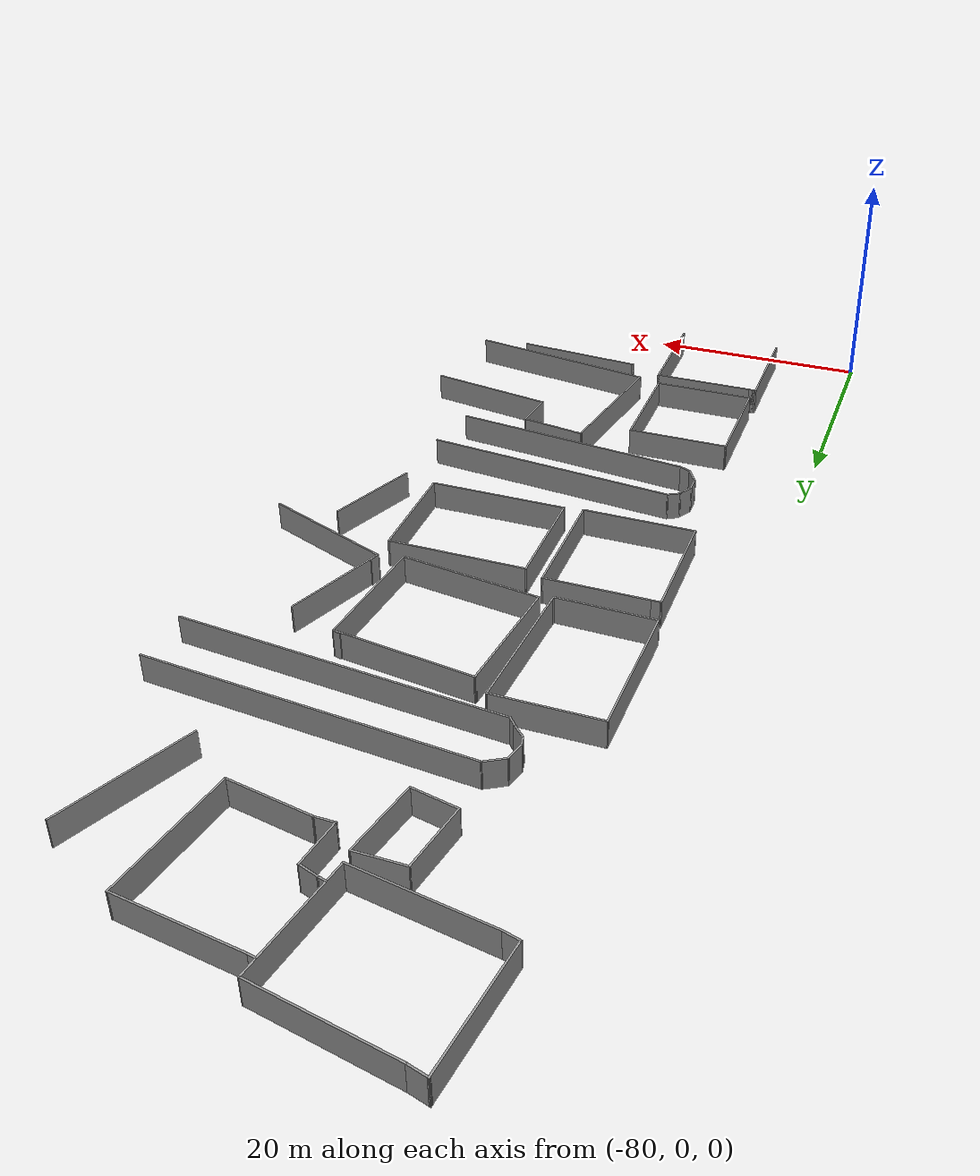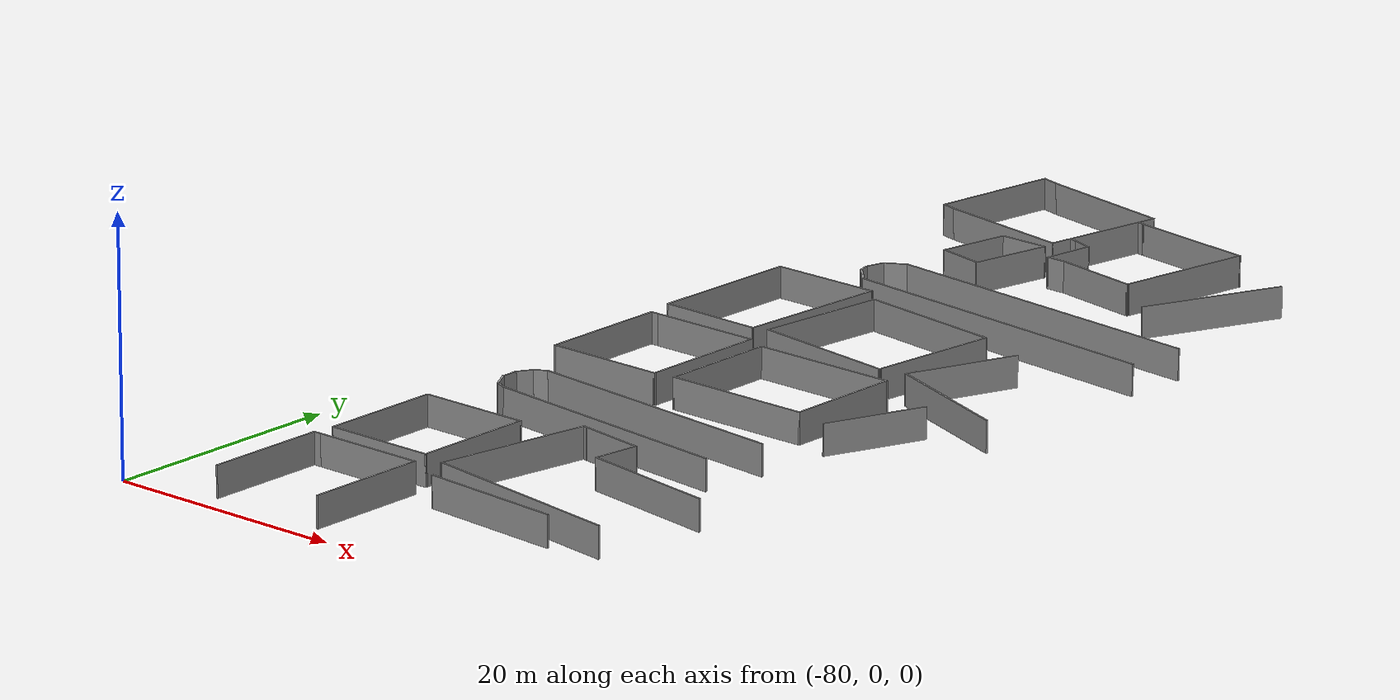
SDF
<sdf version="1.6">
 <model name="palazzo2">
  <pose>-3.81107 -3.99805 0 0 -0 0</pose>
  <link name="Wall_146">
   <collision name="Wall_146_Collision">
    <geometry><box><size>22.8101 0.15 2.5</size></box></geometry>
    <pose>0 0 1.25 0 -0 0</pose>
   </collision>
   <visual name="Wall_146_Visual">
    <pose>0 0 1.25 0 -0 0</pose>
    <geometry><box><size>22.8101 0.15 2.5</size></box></geometry>
    <material>
     <script><uri>file://media/materials/scripts/gazebo.material</uri><name>Gazebo/Grey</name></script>
     <ambient>1 1 1 1</ambient>
    </material>
    <meta><layer>0</layer></meta>
   </visual>
   <pose>-54.1666 35.8429 0 0 -0 -0.091785</pose>
  </link>
  <link name="Wall_148">
   <collision name="Wall_148_Collision">
    <geometry><box><size>21.8464 0.15 2.5</size></box></geometry>
    <pose>0 0 1.25 0 -0 0</pose>
   </collision>
   <visual name="Wall_148_Visual">
    <pose>0 0 1.25 0 -0 0</pose>
    <geometry><box><size>21.8464 0.15 2.5</size></box></geometry>
    <material>
     <script><uri>file://media/materials/scripts/gazebo.material</uri><name>Gazebo/Grey</name></script>
     <ambient>1 1 1 1</ambient>
    </material>
    <meta><layer>0</layer></meta>
   </visual>
   <pose>-54.5186 30.8618 0 0 -0 -0.104028</pose>
  </link>
  <link name="Wall_150">
   <collision name="Wall_150_Collision">
    <geometry><box><size>1.25 0.15 2.5</size></box></geometry>
    <pose>0 0 1.25 0 -0 0</pose>
   </collision>
   <visual name="Wall_150_Visual">
    <pose>0 0 1.25 0 -0 0</pose>
    <geometry><box><size>1.25 0.15 2.5</size></box></geometry>
    <material>
     <script><uri>file://media/materials/scripts/gazebo.material</uri><name>Gazebo/Grey</name></script>
     <ambient>1 1 1 1</ambient>
    </material>
    <meta><layer>0</layer></meta>
   </visual>
   <pose>-65.9253 36.6064 0 0 -0 -2.61799</pose>
  </link>
  <link name="Wall_151">
   <collision name="Wall_151_Collision">
    <geometry><box><size>1.5 0.15 2.5</size></box></geometry>
    <pose>0 0 1.25 0 -0 0</pose>
   </collision>
   <visual name="Wall_151_Visual">
    <pose>0 0 1.25 0 -0 0</pose>
    <geometry><box><size>1.5 0.15 2.5</size></box></geometry>
    <material>
     <script><uri>file://media/materials/scripts/gazebo.material</uri><name>Gazebo/Grey</name></script>
     <ambient>1 1 1 1</ambient>
    </material>
    <meta><layer>0</layer></meta>
   </visual>
   <pose>-66.7391 35.7468 0 0 -0 -2.0944</pose>
  </link>
  <link name="Wall_152">
   <collision name="Wall_152_Collision">
    <geometry><box><size>1.5 0.15 2.5</size></box></geometry>
    <pose>0 0 1.25 0 -0 0</pose>
   </collision>
   <visual name="Wall_152_Visual">
    <pose>0 0 1.25 0 -0 0</pose>
    <geometry><box><size>1.5 0.15 2.5</size></box></geometry>
    <material>
     <script><uri>file://media/materials/scripts/gazebo.material</uri><name>Gazebo/Grey</name></script>
     <ambient>1 1 1 1</ambient>
    </material>
    <meta><layer>0</layer></meta>
   </visual>
   <pose>-67.0766 34.4873 0 0 -0 -1.5708</pose>
  </link>
  <link name="Wall_153">
   <collision name="Wall_153_Collision">
    <geometry><box><size>1.75 0.15 2.5</size></box></geometry>
    <pose>0 0 1.25 0 -0 0</pose>
   </collision>
   <visual name="Wall_153_Visual">
    <pose>0 0 1.25 0 -0 0</pose>
    <geometry><box><size>1.75 0.15 2.5</size></box></geometry>
    <material>
     <script><uri>file://media/materials/scripts/gazebo.material</uri><name>Gazebo/Grey</name></script>
     <ambient>1 1 1 1</ambient>
    </material>
    <meta><layer>0</layer></meta>
   </visual>
   <pose>-66.6766 33.1194 0 0 -0 -1.0472</pose>
  </link>
  <link name="Wall_154">
   <collision name="Wall_154_Collision">
    <geometry><box><size>1.21303 0.15 2.5</size></box></geometry>
    <pose>0 0 1.25 0 -0 0</pose>
   </collision>
   <visual name="Wall_154_Visual">
    <pose>0 0 1.25 0 -0 0</pose>
    <geometry><box><size>1.21303 0.15 2.5</size></box></geometry>
    <material>
     <script><uri>file://media/materials/scripts/gazebo.material</uri><name>Gazebo/Grey</name></script>
     <ambient>1 1 1 1</ambient>
    </material>
    <meta><layer>0</layer></meta>
   </visual>
   <pose>-65.7924 32.2074 0 0 -0 -0.42505</pose>
  </link>
  <link name="Wall_369">
   <collision name="Wall_369_Collision">
    <geometry><box><size>11.814 0.15 2.5</size></box></geometry>
    <pose>0 0 1.25 0 -0 0</pose>
   </collision>
   <visual name="Wall_369_Visual">
    <pose>0 0 1.25 0 -0 0</pose>
    <geometry><box><size>11.814 0.15 2.5</size></box></geometry>
    <material>
     <script><uri>file://media/materials/scripts/gazebo.material</uri><name>Gazebo/Grey</name></script>
     <ambient>1 1 1 1</ambient>
    </material>
    <meta><layer>0</layer></meta>
   </visual>
   <pose>-40.2869 82.8051 0 0 -0 1.16016</pose>
  </link>
  <link name="Wall_374">
   <collision name="Wall_374_Collision">
    <geometry><box><size>4.25 0.15 2.5</size></box></geometry>
    <pose>0 0 1.25 0 -0 0</pose>
   </collision>
   <visual name="Wall_374_Visual">
    <pose>0 0 1.25 0 -0 0</pose>
    <geometry><box><size>4.25 0.15 2.5</size></box></geometry>
    <material>
     <script><uri>file://media/materials/scripts/gazebo.material</uri><name>Gazebo/Grey</name></script>
     <ambient>1 1 1 1</ambient>
    </material>
    <meta><layer>0</layer></meta>
   </visual>
   <pose>-59.649 84.0709 0 0 -0 0</pose>
  </link>
  <link name="Wall_376">
   <collision name="Wall_376_Collision">
    <geometry><box><size>6.74302 0.15 2.5</size></box></geometry>
    <pose>0 0 1.25 0 -0 0</pose>
   </collision>
   <visual name="Wall_376_Visual">
    <pose>0 0 1.25 0 -0 0</pose>
    <geometry><box><size>6.74302 0.15 2.5</size></box></geometry>
    <material>
     <script><uri>file://media/materials/scripts/gazebo.material</uri><name>Gazebo/Grey</name></script>
     <ambient>1 1 1 1</ambient>
    </material>
    <meta><layer>0</layer></meta>
   </visual>
   <pose>-58.2521 80.8397 0 0 -0 1.37138</pose>
  </link>
  <link name="Wall_378">
   <collision name="Wall_378_Collision">
    <geometry><box><size>5.93315 0.15 2.5</size></box></geometry>
    <pose>0 0 1.25 0 -0 0</pose>
   </collision>
   <visual name="Wall_378_Visual">
    <pose>0 0 1.25 0 -0 0</pose>
    <geometry><box><size>5.93315 0.15 2.5</size></box></geometry>
    <material>
     <script><uri>file://media/materials/scripts/gazebo.material</uri><name>Gazebo/Grey</name></script>
     <ambient>1 1 1 1</ambient>
    </material>
    <meta><layer>0</layer></meta>
   </visual>
   <pose>-62.2158 81.2259 0 0 -0 1.39112</pose>
  </link>
  <link name="Wall_380">
   <collision name="Wall_380_Collision">
    <geometry><box><size>4.05458 0.15 2.5</size></box></geometry>
    <pose>0 0 1.25 0 -0 0</pose>
   </collision>
   <visual name="Wall_380_Visual">
    <pose>0 0 1.25 0 -0 0</pose>
    <geometry><box><size>4.05458 0.15 2.5</size></box></geometry>
    <material>
     <script><uri>file://media/materials/scripts/gazebo.material</uri><name>Gazebo/Grey</name></script>
     <ambient>1 1 1 1</ambient>
    </material>
    <meta><layer>0</layer></meta>
   </visual>
   <pose>-60.8189 77.9947 0 0 -0 -0.199107</pose>
  </link>
  <link name="Wall_382">
   <collision name="Wall_382_Collision">
    <geometry><box><size>1.5 0.15 2.5</size></box></geometry>
    <pose>0 0 1.25 0 -0 0</pose>
   </collision>
   <visual name="Wall_382_Visual">
    <pose>0 0 1.25 0 -0 0</pose>
    <geometry><box><size>1.5 0.15 2.5</size></box></geometry>
    <material>
     <script><uri>file://media/materials/scripts/gazebo.material</uri><name>Gazebo/Grey</name></script>
     <ambient>1 1 1 1</ambient>
    </material>
    <meta><layer>0</layer></meta>
   </visual>
   <pose>-69.6085 87.0886 0 0 -0 -0.261799</pose>
  </link>
  <link name="Wall_385">
   <collision name="Wall_385_Collision">
    <geometry><box><size>1.75 0.15 2.5</size></box></geometry>
    <pose>0 0 1.25 0 -0 0</pose>
   </collision>
   <visual name="Wall_385_Visual">
    <pose>0 0 1.25 0 -0 0</pose>
    <geometry><box><size>1.75 0.15 2.5</size></box></geometry>
    <material>
     <script><uri>file://media/materials/scripts/gazebo.material</uri><name>Gazebo/Grey</name></script>
     <ambient>1 1 1 1</ambient>
    </material>
    <meta><layer>0</layer></meta>
   </visual>
   <pose>-68.0258 97.4273 0 0 -0 -0.261799</pose>
  </link>
  <link name="Wall_387">
   <collision name="Wall_387_Collision">
    <geometry><box><size>10.6236 0.15 2.5</size></box></geometry>
    <pose>0 0 1.25 0 -0 0</pose>
   </collision>
   <visual name="Wall_387_Visual">
    <pose>0 0 1.25 0 -0 0</pose>
    <geometry><box><size>10.6236 0.15 2.5</size></box></geometry>
    <material>
     <script><uri>file://media/materials/scripts/gazebo.material</uri><name>Gazebo/Grey</name></script>
     <ambient>1 1 1 1</ambient>
    </material>
    <meta><layer>0</layer></meta>
   </visual>
   <pose>-69.5295 92.4488 0 0 -0 1.43075</pose>
  </link>
  <link name="Wall_389">
   <collision name="Wall_389_Collision">
    <geometry><box><size>11.7035 0.15 2.5</size></box></geometry>
    <pose>0 0 1.25 0 -0 0</pose>
   </collision>
   <visual name="Wall_389_Visual">
    <pose>0 0 1.25 0 -0 0</pose>
    <geometry><box><size>11.7035 0.15 2.5</size></box></geometry>
    <material>
     <script><uri>file://media/materials/scripts/gazebo.material</uri><name>Gazebo/Grey</name></script>
     <ambient>1 1 1 1</ambient>
    </material>
    <meta><layer>0</layer></meta>
   </visual>
   <pose>-61.5724 96.1709 0 0 -0 2.95893</pose>
  </link>
  <link name="Wall_391">
   <collision name="Wall_391_Collision">
    <geometry><box><size>11.5717 0.15 2.5</size></box></geometry>
    <pose>0 0 1.25 0 -0 0</pose>
   </collision>
   <visual name="Wall_391_Visual">
    <pose>0 0 1.25 0 -0 0</pose>
    <geometry><box><size>11.5717 0.15 2.5</size></box></geometry>
    <material>
     <script><uri>file://media/materials/scripts/gazebo.material</uri><name>Gazebo/Grey</name></script>
     <ambient>1 1 1 1</ambient>
    </material>
    <meta><layer>0</layer></meta>
   </visual>
   <pose>-63.315 86.0263 0 0 -0 2.98555</pose>
  </link>
  <link name="Wall_393">
   <collision name="Wall_393_Collision">
    <geometry><box><size>1.75 0.15 2.5</size></box></geometry>
    <pose>0 0 1.25 0 -0 0</pose>
   </collision>
   <visual name="Wall_393_Visual">
    <pose>0 0 1.25 0 -0 0</pose>
    <geometry><box><size>1.75 0.15 2.5</size></box></geometry>
    <material>
     <script><uri>file://media/materials/scripts/gazebo.material</uri><name>Gazebo/Grey</name></script>
     <ambient>1 1 1 1</ambient>
    </material>
    <meta><layer>0</layer></meta>
   </visual>
   <pose>-54.8862 82.1691 0 0 -0 0</pose>
  </link>
  <link name="Wall_396">
   <collision name="Wall_396_Collision">
    <geometry><box><size>7.42732 0.15 2.5</size></box></geometry>
    <pose>0 0 1.25 0 -0 0</pose>
   </collision>
   <visual name="Wall_396_Visual">
    <pose>0 0 1.25 0 -0 0</pose>
    <geometry><box><size>7.42732 0.15 2.5</size></box></geometry>
    <material>
     <script><uri>file://media/materials/scripts/gazebo.material</uri><name>Gazebo/Grey</name></script>
     <ambient>1 1 1 1</ambient>
    </material>
    <meta><layer>0</layer></meta>
   </visual>
   <pose>-50.5002 81.5523 0 0 -0 2.97126</pose>
  </link>
  <link name="Wall_398">
   <collision name="Wall_398_Collision">
    <geometry><box><size>11.4503 0.15 2.5</size></box></geometry>
    <pose>0 0 1.25 0 -0 0</pose>
   </collision>
   <visual name="Wall_398_Visual">
    <pose>0 0 1.25 0 -0 0</pose>
    <geometry><box><size>11.4503 0.15 2.5</size></box></geometry>
    <material>
     <script><uri>file://media/materials/scripts/gazebo.material</uri><name>Gazebo/Grey</name></script>
     <ambient>1 1 1 1</ambient>
    </material>
    <meta><layer>0</layer></meta>
   </visual>
   <pose>-45.989 86.5094 0 0 -0 -1.73528</pose>
  </link>
  <link name="Wall_400">
   <collision name="Wall_400_Collision">
    <geometry><box><size>10.7048 0.15 2.5</size></box></geometry>
    <pose>0 0 1.25 0 -0 0</pose>
   </collision>
   <visual name="Wall_400_Visual">
    <pose>0 0 1.25 0 -0 0</pose>
    <geometry><box><size>10.7048 0.15 2.5</size></box></geometry>
    <material>
     <script><uri>file://media/materials/scripts/gazebo.material</uri><name>Gazebo/Grey</name></script>
     <ambient>1 1 1 1</ambient>
    </material>
    <meta><layer>0</layer></meta>
   </visual>
   <pose>-50.295 92.78 0 0 -0 -0.132409</pose>
  </link>
  <link name="Wall_402">
   <collision name="Wall_402_Collision">
    <geometry><box><size>4.21414 0.15 2.5</size></box></geometry>
    <pose>0 0 1.25 0 -0 0</pose>
   </collision>
   <visual name="Wall_402_Visual">
    <pose>0 0 1.25 0 -0 0</pose>
    <geometry><box><size>4.21414 0.15 2.5</size></box></geometry>
    <material>
     <script><uri>file://media/materials/scripts/gazebo.material</uri><name>Gazebo/Grey</name></script>
     <ambient>1 1 1 1</ambient>
    </material>
    <meta><layer>0</layer></meta>
   </visual>
   <pose>-55.3892 84.1794 0 0 -0 -1.71746</pose>
  </link>
  <link name="Wall_404">
   <collision name="Wall_404_Collision">
    <geometry><box><size>1.86206 0.15 2.5</size></box></geometry>
    <pose>0 0 1.25 0 -0 0</pose>
   </collision>
   <visual name="Wall_404_Visual">
    <pose>0 0 1.25 0 -0 0</pose>
    <geometry><box><size>1.86206 0.15 2.5</size></box></geometry>
    <material>
     <script><uri>file://media/materials/scripts/gazebo.material</uri><name>Gazebo/Grey</name></script>
     <ambient>1 1 1 1</ambient>
    </material>
    <meta><layer>0</layer></meta>
   </visual>
   <pose>-55.9032 86.4637 0 0 -0 -0.32597</pose>
  </link>
  <link name="Wall_406">
   <collision name="Wall_406_Collision">
    <geometry><box><size>10.2905 0.15 2.5</size></box></geometry>
    <pose>0 0 1.25 0 -0 0</pose>
   </collision>
   <visual name="Wall_406_Visual">
    <pose>0 0 1.25 0 -0 0</pose>
    <geometry><box><size>10.2905 0.15 2.5</size></box></geometry>
    <material>
     <script><uri>file://media/materials/scripts/gazebo.material</uri><name>Gazebo/Grey</name></script>
     <ambient>1 1 1 1</ambient>
    </material>
    <meta><layer>0</layer></meta>
   </visual>
   <pose>-56.7827 90.1302 0 0 -0 1.39417</pose>
  </link>
  <link name="Wall_413">
   <collision name="Wall_413_Collision">
    <geometry><box><size>0.776557 0.15 2.5</size></box></geometry>
    <pose>0 0 1.25 0 -0 0</pose>
   </collision>
   <visual name="Wall_413_Visual">
    <pose>0 0 1.25 0 -0 0</pose>
    <geometry><box><size>0.776557 0.15 2.5</size></box></geometry>
    <material>
     <script><uri>file://media/materials/scripts/gazebo.material</uri><name>Gazebo/Grey</name></script>
     <ambient>1 1 1 1</ambient>
    </material>
    <meta><layer>0</layer></meta>
   </visual>
   <pose>-55.8321 93.5446 0 0 -0 -0.218264</pose>
  </link>
  <link name="Wall_415">
   <collision name="Wall_415_Collision">
    <geometry><box><size>0.784439 0.15 2.5</size></box></geometry>
    <pose>0 0 1.25 0 -0 0</pose>
   </collision>
   <visual name="Wall_415_Visual">
    <pose>0 0 1.25 0 -0 0</pose>
    <geometry><box><size>0.784439 0.15 2.5</size></box></geometry>
    <material>
     <script><uri>file://media/materials/scripts/gazebo.material</uri><name>Gazebo/Grey</name></script>
     <ambient>1 1 1 1</ambient>
    </material>
    <meta><layer>0</layer></meta>
   </visual>
   <pose>-57.0235 86.8082 0 0 -0 -0.223621</pose>
  </link>
  <link name="Wall_465">
   <collision name="Wall_465_Collision">
    <geometry><box><size>8.4006 0.15 2.5</size></box></geometry>
    <pose>0 0 1.25 0 -0 0</pose>
   </collision>
   <visual name="Wall_465_Visual">
    <pose>0 0 1.25 0 -0 0</pose>
    <geometry><box><size>8.4006 0.15 2.5</size></box></geometry>
    <material>
     <script><uri>file://media/materials/scripts/gazebo.material</uri><name>Gazebo/Grey</name></script>
     <ambient>1 1 1 1</ambient>
    </material>
    <meta><layer>0</layer></meta>
   </visual>
   <pose>-41.0358 44.9994 0 0 -0 1.19591</pose>
  </link>
  <link name="Wall_482">
   <collision name="Wall_482_Collision">
    <geometry><box><size>1 0.15 2.5</size></box></geometry>
    <pose>0 0 1.25 0 -0 0</pose>
   </collision>
   <visual name="Wall_482_Visual">
    <pose>0 0 1.25 0 -0 0</pose>
    <geometry><box><size>1 0.15 2.5</size></box></geometry>
    <material>
     <script><uri>file://media/materials/scripts/gazebo.material</uri><name>Gazebo/Grey</name></script>
     <ambient>1 1 1 1</ambient>
    </material>
    <meta><layer>0</layer></meta>
   </visual>
   <pose>-45.3997 54.0771 0 0 -0 1.309</pose>
  </link>
  <link name="Wall_484">
   <collision name="Wall_484_Collision">
    <geometry><box><size>9.38659 0.15 2.5</size></box></geometry>
    <pose>0 0 1.25 0 -0 0</pose>
   </collision>
   <visual name="Wall_484_Visual">
    <pose>0 0 1.25 0 -0 0</pose>
    <geometry><box><size>9.38659 0.15 2.5</size></box></geometry>
    <material>
     <script><uri>file://media/materials/scripts/gazebo.material</uri><name>Gazebo/Grey</name></script>
     <ambient>1 1 1 1</ambient>
    </material>
    <meta><layer>0</layer></meta>
   </visual>
   <pose>-43.8509 57.9767 0 0 -0 -1.93817</pose>
  </link>
  <link name="Wall_486">
   <collision name="Wall_486_Collision">
    <geometry><box><size>12.1287 0.15 2.5</size></box></geometry>
    <pose>0 0 1.25 0 -0 0</pose>
   </collision>
   <visual name="Wall_486_Visual">
    <pose>0 0 1.25 0 -0 0</pose>
    <geometry><box><size>12.1287 0.15 2.5</size></box></geometry>
    <material>
     <script><uri>file://media/materials/scripts/gazebo.material</uri><name>Gazebo/Grey</name></script>
     <ambient>1 1 1 1</ambient>
    </material>
    <meta><layer>0</layer></meta>
   </visual>
   <pose>-39.9065 51.5507 0 0 -0 2.78052</pose>
  </link>
  <link name="Wall_492">
   <collision name="Wall_492_Collision">
    <geometry><box><size>0.75 0.15 2.5</size></box></geometry>
    <pose>0 0 1.25 0 -0 0</pose>
   </collision>
   <visual name="Wall_492_Visual">
    <pose>0 0 1.25 0 -0 0</pose>
    <geometry><box><size>0.75 0.15 2.5</size></box></geometry>
    <material>
     <script><uri>file://media/materials/scripts/gazebo.material</uri><name>Gazebo/Grey</name></script>
     <ambient>1 1 1 1</ambient>
    </material>
    <meta><layer>0</layer></meta>
   </visual>
   <pose>-46.8443 64.0363 0 0 -0 2.87979</pose>
  </link>
  <link name="Wall_494">
   <collision name="Wall_494_Collision">
    <geometry><box><size>12.4492 0.15 2.5</size></box></geometry>
    <pose>0 0 1.25 0 -0 0</pose>
   </collision>
   <visual name="Wall_494_Visual">
    <pose>0 0 1.25 0 -0 0</pose>
    <geometry><box><size>12.4492 0.15 2.5</size></box></geometry>
    <material>
     <script><uri>file://media/materials/scripts/gazebo.material</uri><name>Gazebo/Grey</name></script>
     <ambient>1 1 1 1</ambient>
    </material>
    <meta><layer>0</layer></meta>
   </visual>
   <pose>-52.654 64.7423 0 0 -0 -0.12778</pose>
  </link>
  <link name="Wall_496">
   <collision name="Wall_496_Collision">
    <geometry><box><size>10.9654 0.15 2.5</size></box></geometry>
    <pose>0 0 1.25 0 -0 0</pose>
   </collision>
   <visual name="Wall_496_Visual">
    <pose>0 0 1.25 0 -0 0</pose>
    <geometry><box><size>10.9654 0.15 2.5</size></box></geometry>
    <material>
     <script><uri>file://media/materials/scripts/gazebo.material</uri><name>Gazebo/Grey</name></script>
     <ambient>1 1 1 1</ambient>
    </material>
    <meta><layer>0</layer></meta>
   </visual>
   <pose>-47.0901 58.5775 0 0 -0 1.47161</pose>
  </link>
  <link name="Wall_498">
   <collision name="Wall_498_Collision">
    <geometry><box><size>10.9447 0.15 2.5</size></box></geometry>
    <pose>0 0 1.25 0 -0 0</pose>
   </collision>
   <visual name="Wall_498_Visual">
    <pose>0 0 1.25 0 -0 0</pose>
    <geometry><box><size>10.9447 0.15 2.5</size></box></geometry>
    <material>
     <script><uri>file://media/materials/scripts/gazebo.material</uri><name>Gazebo/Grey</name></script>
     <ambient>1 1 1 1</ambient>
    </material>
    <meta><layer>0</layer></meta>
   </visual>
   <pose>-59.3152 60.1579 0 0 -0 1.46655</pose>
  </link>
  <link name="Wall_500">
   <collision name="Wall_500_Collision">
    <geometry><box><size>12.5044 0.15 2.5</size></box></geometry>
    <pose>0 0 1.25 0 -0 0</pose>
   </collision>
   <visual name="Wall_500_Visual">
    <pose>0 0 1.25 0 -0 0</pose>
    <geometry><box><size>12.5044 0.15 2.5</size></box></geometry>
    <material>
     <script><uri>file://media/materials/scripts/gazebo.material</uri><name>Gazebo/Grey</name></script>
     <ambient>1 1 1 1</ambient>
    </material>
    <meta><layer>0</layer></meta>
   </visual>
   <pose>-53.7512 53.9931 0 0 -0 -0.129338</pose>
  </link>
  <link name="Wall_502">
   <collision name="Wall_502_Collision">
    <geometry><box><size>0.5 0.15 2.5</size></box></geometry>
    <pose>0 0 1.25 0 -0 0</pose>
   </collision>
   <visual name="Wall_502_Visual">
    <pose>0 0 1.25 0 -0 0</pose>
    <geometry><box><size>0.5 0.15 2.5</size></box></geometry>
    <material>
     <script><uri>file://media/materials/scripts/gazebo.material</uri><name>Gazebo/Grey</name></script>
     <ambient>1 1 1 1</ambient>
    </material>
    <meta><layer>0</layer></meta>
   </visual>
   <pose>-60.9739 54.5469 0 0 -0 1.5708</pose>
  </link>
  <link name="Wall_505">
   <collision name="Wall_505_Collision">
    <geometry><box><size>12.7636 0.15 2.5</size></box></geometry>
    <pose>0 0 1.25 0 -0 0</pose>
   </collision>
   <visual name="Wall_505_Visual">
    <pose>0 0 1.25 0 -0 0</pose>
    <geometry><box><size>12.7636 0.15 2.5</size></box></geometry>
    <material>
     <script><uri>file://media/materials/scripts/gazebo.material</uri><name>Gazebo/Grey</name></script>
     <ambient>1 1 1 1</ambient>
    </material>
    <meta><layer>0</layer></meta>
   </visual>
   <pose>-60.5951 60.6673 0 0 -0 -1.63089</pose>
  </link>
  <link name="Wall_509">
   <collision name="Wall_509_Collision">
    <geometry><box><size>9.25 0.15 2.5</size></box></geometry>
    <pose>0 0 1.25 0 -0 0</pose>
   </collision>
   <visual name="Wall_509_Visual">
    <pose>0 0 1.25 0 -0 0</pose>
    <geometry><box><size>9.25 0.15 2.5</size></box></geometry>
    <material>
     <script><uri>file://media/materials/scripts/gazebo.material</uri><name>Gazebo/Grey</name></script>
     <ambient>1 1 1 1</ambient>
    </material>
    <meta><layer>0</layer></meta>
   </visual>
   <pose>-64.7664 66.9627 0 0 -0 3.14159</pose>
  </link>
  <link name="Wall_511">
   <collision name="Wall_511_Collision">
    <geometry><box><size>12.5861 0.15 2.5</size></box></geometry>
    <pose>0 0 1.25 0 -0 0</pose>
   </collision>
   <visual name="Wall_511_Visual">
    <pose>0 0 1.25 0 -0 0</pose>
    <geometry><box><size>12.5861 0.15 2.5</size></box></geometry>
    <material>
     <script><uri>file://media/materials/scripts/gazebo.material</uri><name>Gazebo/Grey</name></script>
     <ambient>1 1 1 1</ambient>
    </material>
    <meta><layer>0</layer></meta>
   </visual>
   <pose>-69.4291 60.7456 0 0 -0 1.55266</pose>
  </link>
  <link name="Wall_513">
   <collision name="Wall_513_Collision">
    <geometry><box><size>8.71945 0.15 2.5</size></box></geometry>
    <pose>0 0 1.25 0 -0 0</pose>
   </collision>
   <visual name="Wall_513_Visual">
    <pose>0 0 1.25 0 -0 0</pose>
    <geometry><box><size>8.71945 0.15 2.5</size></box></geometry>
    <material>
     <script><uri>file://media/materials/scripts/gazebo.material</uri><name>Gazebo/Grey</name></script>
     <ambient>1 1 1 1</ambient>
    </material>
    <meta><layer>0</layer></meta>
   </visual>
   <pose>-65.2579 54.4502 0 0 -0 -0.018291</pose>
  </link>
  <link name="Wall_515">
   <collision name="Wall_515_Collision">
    <geometry><box><size>9.25 0.15 2.5</size></box></geometry>
    <pose>0 0 1.25 0 -0 0</pose>
   </collision>
   <visual name="Wall_515_Visual">
    <pose>0 0 1.25 0 -0 0</pose>
    <geometry><box><size>9.25 0.15 2.5</size></box></geometry>
    <material>
     <script><uri>file://media/materials/scripts/gazebo.material</uri><name>Gazebo/Grey</name></script>
     <ambient>1 1 1 1</ambient>
    </material>
    <meta><layer>0</layer></meta>
   </visual>
   <pose>-63.8331 52.2295 0 0 -0 0</pose>
  </link>
  <link name="Wall_516">
   <collision name="Wall_516_Collision">
    <geometry><box><size>10.75 0.15 2.5</size></box></geometry>
    <pose>0 0 1.25 0 -0 0</pose>
   </collision>
   <visual name="Wall_516_Visual">
    <pose>0 0 1.25 0 -0 0</pose>
    <geometry><box><size>10.75 0.15 2.5</size></box></geometry>
    <material>
     <script><uri>file://media/materials/scripts/gazebo.material</uri><name>Gazebo/Grey</name></script>
     <ambient>1 1 1 1</ambient>
    </material>
    <meta><layer>0</layer></meta>
   </visual>
   <pose>-59.2831 46.9295 0 0 -0 -1.5708</pose>
  </link>
  <link name="Wall_517">
   <collision name="Wall_517_Collision">
    <geometry><box><size>10 0.15 2.5</size></box></geometry>
    <pose>0 0 1.25 0 -0 0</pose>
   </collision>
   <visual name="Wall_517_Visual">
    <pose>0 0 1.25 0 -0 0</pose>
    <geometry><box><size>10 0.15 2.5</size></box></geometry>
    <material>
     <script><uri>file://media/materials/scripts/gazebo.material</uri><name>Gazebo/Grey</name></script>
     <ambient>1 1 1 1</ambient>
    </material>
    <meta><layer>0</layer></meta>
   </visual>
   <pose>-64.2081 41.6295 0 0 -0 3.14159</pose>
  </link>
  <link name="Wall_518">
   <collision name="Wall_518_Collision">
    <geometry><box><size>10.75 0.15 2.5</size></box></geometry>
    <pose>0 0 1.25 0 -0 0</pose>
   </collision>
   <visual name="Wall_518_Visual">
    <pose>0 0 1.25 0 -0 0</pose>
    <geometry><box><size>10.75 0.15 2.5</size></box></geometry>
    <material>
     <script><uri>file://media/materials/scripts/gazebo.material</uri><name>Gazebo/Grey</name></script>
     <ambient>1 1 1 1</ambient>
    </material>
    <meta><layer>0</layer></meta>
   </visual>
   <pose>-69.1331 46.9295 0 0 -0 1.5708</pose>
  </link>
  <link name="Wall_519">
   <collision name="Wall_519_Collision">
    <geometry><box><size>0.9 0.15 2.5</size></box></geometry>
    <pose>0 0 1.25 0 -0 0</pose>
   </collision>
   <visual name="Wall_519_Visual">
    <pose>0 0 1.25 0 -0 0</pose>
    <geometry><box><size>0.9 0.15 2.5</size></box></geometry>
    <material>
     <script><uri>file://media/materials/scripts/gazebo.material</uri><name>Gazebo/Grey</name></script>
     <ambient>1 1 1 1</ambient>
    </material>
    <meta><layer>0</layer></meta>
   </visual>
   <pose>-68.7581 52.2295 0 0 -0 0</pose>
  </link>
  <link name="Wall_521">
   <collision name="Wall_521_Collision">
    <geometry><box><size>9.75 0.15 2.5</size></box></geometry>
    <pose>0 0 1.25 0 -0 0</pose>
   </collision>
   <visual name="Wall_521_Visual">
    <pose>0 0 1.25 0 -0 0</pose>
    <geometry><box><size>9.75 0.15 2.5</size></box></geometry>
    <material>
     <script><uri>file://media/materials/scripts/gazebo.material</uri><name>Gazebo/Grey</name></script>
     <ambient>1 1 1 1</ambient>
    </material>
    <meta><layer>0</layer></meta>
   </visual>
   <pose>-57.6008 46.6737 0 0 -0 1.5708</pose>
  </link>
  <link name="Wall_522">
   <collision name="Wall_522_Collision">
    <geometry><box><size>12.25 0.15 2.5</size></box></geometry>
    <pose>0 0 1.25 0 -0 0</pose>
   </collision>
   <visual name="Wall_522_Visual">
    <pose>0 0 1.25 0 -0 0</pose>
    <geometry><box><size>12.25 0.15 2.5</size></box></geometry>
    <material>
     <script><uri>file://media/materials/scripts/gazebo.material</uri><name>Gazebo/Grey</name></script>
     <ambient>1 1 1 1</ambient>
    </material>
    <meta><layer>0</layer></meta>
   </visual>
   <pose>-51.5508 51.4737 0 0 -0 0</pose>
  </link>
  <link name="Wall_524">
   <collision name="Wall_524_Collision">
    <geometry><box><size>12.25 0.15 2.5</size></box></geometry>
    <pose>0 0 1.25 0 -0 0</pose>
   </collision>
   <visual name="Wall_524_Visual">
    <pose>0 0 1.25 0 -0 0</pose>
    <geometry><box><size>12.25 0.15 2.5</size></box></geometry>
    <material>
     <script><uri>file://media/materials/scripts/gazebo.material</uri><name>Gazebo/Grey</name></script>
     <ambient>1 1 1 1</ambient>
    </material>
    <meta><layer>0</layer></meta>
   </visual>
   <pose>-51.5508 41.8737 0 0 -0 0</pose>
  </link>
  <link name="Wall_525">
   <collision name="Wall_525_Collision">
    <geometry><box><size>9.75 0.15 2.5</size></box></geometry>
    <pose>0 0 1.25 0 -0 0</pose>
   </collision>
   <visual name="Wall_525_Visual">
    <pose>0 0 1.25 0 -0 0</pose>
    <geometry><box><size>9.75 0.15 2.5</size></box></geometry>
    <material>
     <script><uri>file://media/materials/scripts/gazebo.material</uri><name>Gazebo/Grey</name></script>
     <ambient>1 1 1 1</ambient>
    </material>
    <meta><layer>0</layer></meta>
   </visual>
   <pose>-45.5008 46.6737 0 0 -0 1.5708</pose>
  </link>
  <link name="Wall_613">
   <collision name="Wall_613_Collision">
    <geometry><box><size>0.5 0.15 2.5</size></box></geometry>
    <pose>0 0 1.25 0 -0 0</pose>
   </collision>
   <visual name="Wall_613_Visual">
    <pose>0 0 1.25 0 -0 0</pose>
    <geometry><box><size>0.5 0.15 2.5</size></box></geometry>
    <material>
     <script><uri>file://media/materials/scripts/gazebo.material</uri><name>Gazebo/Grey</name></script>
     <ambient>1 1 1 1</ambient>
    </material>
    <meta><layer>0</layer></meta>
   </visual>
   <pose>-54.831 29.2463 0 0 -0 -0.261799</pose>
  </link>
  <link name="Wall_615">
   <collision name="Wall_615_Collision">
    <geometry><box><size>12.9213 0.15 2.5</size></box></geometry>
    <pose>0 0 1.25 0 -0 0</pose>
   </collision>
   <visual name="Wall_615_Visual">
    <pose>0 0 1.25 0 -0 0</pose>
    <geometry><box><size>12.9213 0.15 2.5</size></box></geometry>
    <material>
     <script><uri>file://media/materials/scripts/gazebo.material</uri><name>Gazebo/Grey</name></script>
     <ambient>1 1 1 1</ambient>
    </material>
    <meta><layer>0</layer></meta>
   </visual>
   <pose>-56.0449 22.992 0 0 -0 1.40643</pose>
  </link>
  <link name="Wall_617">
   <collision name="Wall_617_Collision">
    <geometry><box><size>6.001 0.15 2.5</size></box></geometry>
    <pose>0 0 1.25 0 -0 0</pose>
   </collision>
   <visual name="Wall_617_Visual">
    <pose>0 0 1.25 0 -0 0</pose>
    <geometry><box><size>6.001 0.15 2.5</size></box></geometry>
    <material>
     <script><uri>file://media/materials/scripts/gazebo.material</uri><name>Gazebo/Grey</name></script>
     <ambient>1 1 1 1</ambient>
    </material>
    <meta><layer>0</layer></meta>
   </visual>
   <pose>-52.1077 28.8524 0 0 -0 2.99091</pose>
  </link>
  <link name="Wall_619">
   <collision name="Wall_619_Collision">
    <geometry><box><size>3.8391 0.15 2.5</size></box></geometry>
    <pose>0 0 1.25 0 -0 0</pose>
   </collision>
   <visual name="Wall_619_Visual">
    <pose>0 0 1.25 0 -0 0</pose>
    <geometry><box><size>3.8391 0.15 2.5</size></box></geometry>
    <material>
     <script><uri>file://media/materials/scripts/gazebo.material</uri><name>Gazebo/Grey</name></script>
     <ambient>1 1 1 1</ambient>
    </material>
    <meta><layer>0</layer></meta>
   </visual>
   <pose>-49.4273 26.5809 0 0 -0 1.45561</pose>
  </link>
  <link name="Wall_621">
   <collision name="Wall_621_Collision">
    <geometry><box><size>11.6172 0.15 2.5</size></box></geometry>
    <pose>0 0 1.25 0 -0 0</pose>
   </collision>
   <visual name="Wall_621_Visual">
    <pose>0 0 1.25 0 -0 0</pose>
    <geometry><box><size>11.6172 0.15 2.5</size></box></geometry>
    <material>
     <script><uri>file://media/materials/scripts/gazebo.material</uri><name>Gazebo/Grey</name></script>
     <ambient>1 1 1 1</ambient>
    </material>
    <meta><layer>0</layer></meta>
   </visual>
   <pose>-43.9758 23.8551 0 0 -0 2.98513</pose>
  </link>
  <link name="Wall_625">
   <collision name="Wall_625_Collision">
    <geometry><box><size>17.7284 0.15 2.5</size></box></geometry>
    <pose>0 0 1.25 0 -0 0</pose>
   </collision>
   <visual name="Wall_625_Visual">
    <pose>0 0 1.25 0 -0 0</pose>
    <geometry><box><size>17.7284 0.15 2.5</size></box></geometry>
    <material>
     <script><uri>file://media/materials/scripts/gazebo.material</uri><name>Gazebo/Grey</name></script>
     <ambient>1 1 1 1</ambient>
    </material>
    <meta><layer>0</layer></meta>
   </visual>
   <pose>-48.3976 15.3901 0 0 -0 -0.14872</pose>
  </link>
  <link name="Wall_627">
   <collision name="Wall_627_Collision">
    <geometry><box><size>9.25 0.15 2.5</size></box></geometry>
    <pose>0 0 1.25 0 -0 0</pose>
   </collision>
   <visual name="Wall_627_Visual">
    <pose>0 0 1.25 0 -0 0</pose>
    <geometry><box><size>9.25 0.15 2.5</size></box></geometry>
    <material>
     <script><uri>file://media/materials/scripts/gazebo.material</uri><name>Gazebo/Grey</name></script>
     <ambient>1 1 1 1</ambient>
    </material>
    <meta><layer>0</layer></meta>
   </visual>
   <pose>-63.7457 27.1109 0 0 -0 0</pose>
  </link>
  <link name="Wall_628">
   <collision name="Wall_628_Collision">
    <geometry><box><size>10 0.15 2.5</size></box></geometry>
    <pose>0 0 1.25 0 -0 0</pose>
   </collision>
   <visual name="Wall_628_Visual">
    <pose>0 0 1.25 0 -0 0</pose>
    <geometry><box><size>10 0.15 2.5</size></box></geometry>
    <material>
     <script><uri>file://media/materials/scripts/gazebo.material</uri><name>Gazebo/Grey</name></script>
     <ambient>1 1 1 1</ambient>
    </material>
    <meta><layer>0</layer></meta>
   </visual>
   <pose>-59.1957 22.1859 0 0 -0 -1.5708</pose>
  </link>
  <link name="Wall_629">
   <collision name="Wall_629_Collision">
    <geometry><box><size>9.25 0.15 2.5</size></box></geometry>
    <pose>0 0 1.25 0 -0 0</pose>
   </collision>
   <visual name="Wall_629_Visual">
    <pose>0 0 1.25 0 -0 0</pose>
    <geometry><box><size>9.25 0.15 2.5</size></box></geometry>
    <material>
     <script><uri>file://media/materials/scripts/gazebo.material</uri><name>Gazebo/Grey</name></script>
     <ambient>1 1 1 1</ambient>
    </material>
    <meta><layer>0</layer></meta>
   </visual>
   <pose>-63.7457 17.2609 0 0 -0 3.14159</pose>
  </link>
  <link name="Wall_630">
   <collision name="Wall_630_Collision">
    <geometry><box><size>10 0.15 2.5</size></box></geometry>
    <pose>0 0 1.25 0 -0 0</pose>
   </collision>
   <visual name="Wall_630_Visual">
    <pose>0 0 1.25 0 -0 0</pose>
    <geometry><box><size>10 0.15 2.5</size></box></geometry>
    <material>
     <script><uri>file://media/materials/scripts/gazebo.material</uri><name>Gazebo/Grey</name></script>
     <ambient>1 1 1 1</ambient>
    </material>
    <meta><layer>0</layer></meta>
   </visual>
   <pose>-68.2957 22.1859 0 0 -0 1.5708</pose>
  </link>
  <link name="Wall_632">
   <collision name="Wall_632_Collision">
    <geometry><box><size>9.75 0.15 2.5</size></box></geometry>
    <pose>0 0 1.25 0 -0 0</pose>
   </collision>
   <visual name="Wall_632_Visual">
    <pose>0 0 1.25 0 -0 0</pose>
    <geometry><box><size>9.75 0.15 2.5</size></box></geometry>
    <material>
     <script><uri>file://media/materials/scripts/gazebo.material</uri><name>Gazebo/Grey</name></script>
     <ambient>1 1 1 1</ambient>
    </material>
    <meta><layer>0</layer></meta>
   </visual>
   <pose>-63.4957 15.6021 0 0 -0 0</pose>
  </link>
  <link name="Wall_633">
   <collision name="Wall_633_Collision">
    <geometry><box><size>10 0.15 2.5</size></box></geometry>
    <pose>0 0 1.25 0 -0 0</pose>
   </collision>
   <visual name="Wall_633_Visual">
    <pose>0 0 1.25 0 -0 0</pose>
    <geometry><box><size>10 0.15 2.5</size></box></geometry>
    <material>
     <script><uri>file://media/materials/scripts/gazebo.material</uri><name>Gazebo/Grey</name></script>
     <ambient>1 1 1 1</ambient>
    </material>
    <meta><layer>0</layer></meta>
   </visual>
   <pose>-58.6957 10.6771 0 0 -0 -1.5708</pose>
  </link>
  <link name="Wall_635">
   <collision name="Wall_635_Collision">
    <geometry><box><size>10 0.15 2.5</size></box></geometry>
    <pose>0 0 1.25 0 -0 0</pose>
   </collision>
   <visual name="Wall_635_Visual">
    <pose>0 0 1.25 0 -0 0</pose>
    <geometry><box><size>10 0.15 2.5</size></box></geometry>
    <material>
     <script><uri>file://media/materials/scripts/gazebo.material</uri><name>Gazebo/Grey</name></script>
     <ambient>1 1 1 1</ambient>
    </material>
    <meta><layer>0</layer></meta>
   </visual>
   <pose>-68.5457 10.6771 0 0 -0 1.5708</pose>
  </link>
  <link name="Wall_636">
   <collision name="Wall_636_Collision">
    <geometry><box><size>0.75 0.15 2.5</size></box></geometry>
    <pose>0 0 1.25 0 -0 0</pose>
   </collision>
   <visual name="Wall_636_Visual">
    <pose>0 0 1.25 0 -0 0</pose>
    <geometry><box><size>0.75 0.15 2.5</size></box></geometry>
    <material>
     <script><uri>file://media/materials/scripts/gazebo.material</uri><name>Gazebo/Grey</name></script>
     <ambient>1 1 1 1</ambient>
    </material>
    <meta><layer>0</layer></meta>
   </visual>
   <pose>-68.2457 15.6021 0 0 -0 0</pose>
  </link>
  <link name="Wall_638">
   <collision name="Wall_638_Collision">
    <geometry><box><size>0.25 0.15 2.5</size></box></geometry>
    <pose>0 0 1.25 0 -0 0</pose>
   </collision>
   <visual name="Wall_638_Visual">
    <pose>0 0 1.25 0 -0 0</pose>
    <geometry><box><size>0.25 0.15 2.5</size></box></geometry>
    <material>
     <script><uri>file://media/materials/scripts/gazebo.material</uri><name>Gazebo/Grey</name></script>
     <ambient>1 1 1 1</ambient>
    </material>
    <meta><layer>0</layer></meta>
   </visual>
   <pose>-55.6163 14.2695 0 0 -0 0</pose>
  </link>
  <link name="Wall_640">
   <collision name="Wall_640_Collision">
    <geometry><box><size>11.9015 0.15 2.5</size></box></geometry>
    <pose>0 0 1.25 0 -0 0</pose>
   </collision>
   <visual name="Wall_640_Visual">
    <pose>0 0 1.25 0 -0 0</pose>
    <geometry><box><size>11.9015 0.15 2.5</size></box></geometry>
    <material>
     <script><uri>file://media/materials/scripts/gazebo.material</uri><name>Gazebo/Grey</name></script>
     <ambient>1 1 1 1</ambient>
    </material>
    <meta><layer>0</layer></meta>
   </visual>
   <pose>-49.8059 13.8455 0 0 -0 3.06937</pose>
  </link>
  <link name="Wall_88">
   <collision name="Wall_88_Collision">
    <geometry><box><size>28.3977 0.15 2.5</size></box></geometry>
    <pose>0 0 1.25 0 -0 0</pose>
   </collision>
   <visual name="Wall_88_Visual">
    <pose>0 0 1.25 0 -0 0</pose>
    <geometry><box><size>28.3977 0.15 2.5</size></box></geometry>
    <material>
     <script><uri>file://media/materials/scripts/gazebo.material</uri><name>Gazebo/Grey</name></script>
     <ambient>1 1 1 1</ambient>
    </material>
    <meta><layer>0</layer></meta>
   </visual>
   <pose>-48.6654 67.6073 0 0 -0 -0.08978</pose>
  </link>
  <link name="Wall_90">
   <collision name="Wall_90_Collision">
    <geometry><box><size>28.3514 0.15 2.5</size></box></geometry>
    <pose>0 0 1.25 0 -0 0</pose>
   </collision>
   <visual name="Wall_90_Visual">
    <pose>0 0 1.25 0 -0 0</pose>
    <geometry><box><size>28.3514 0.15 2.5</size></box></geometry>
    <material>
     <script><uri>file://media/materials/scripts/gazebo.material</uri><name>Gazebo/Grey</name></script>
     <ambient>1 1 1 1</ambient>
    </material>
    <meta><layer>0</layer></meta>
   </visual>
   <pose>-48.406 72.581 0 0 -0 -0.083411</pose>
  </link>
  <link name="Wall_92">
   <collision name="Wall_92_Collision">
    <geometry><box><size>2 0.15 2.5</size></box></geometry>
    <pose>0 0 1.25 0 -0 0</pose>
   </collision>
   <visual name="Wall_92_Visual">
    <pose>0 0 1.25 0 -0 0</pose>
    <geometry><box><size>2 0.15 2.5</size></box></geometry>
    <material>
     <script><uri>file://media/materials/scripts/gazebo.material</uri><name>Gazebo/Grey</name></script>
     <ambient>1 1 1 1</ambient>
    </material>
    <meta><layer>0</layer></meta>
   </visual>
   <pose>-63.2588 73.2933 0 0 -0 -2.61799</pose>
  </link>
  <link name="Wall_93">
   <collision name="Wall_93_Collision">
    <geometry><box><size>1.75 0.15 2.5</size></box></geometry>
    <pose>0 0 1.25 0 -0 0</pose>
   </collision>
   <visual name="Wall_93_Visual">
    <pose>0 0 1.25 0 -0 0</pose>
    <geometry><box><size>1.75 0.15 2.5</size></box></geometry>
    <material>
     <script><uri>file://media/materials/scripts/gazebo.material</uri><name>Gazebo/Grey</name></script>
     <ambient>1 1 1 1</ambient>
    </material>
    <meta><layer>0</layer></meta>
   </visual>
   <pose>-64.2669 72.0581 0 0 -0 -1.8326</pose>
  </link>
  <link name="Wall_94">
   <collision name="Wall_94_Collision">
    <geometry><box><size>1 0.15 2.5</size></box></geometry>
    <pose>0 0 1.25 0 -0 0</pose>
   </collision>
   <visual name="Wall_94_Visual">
    <pose>0 0 1.25 0 -0 0</pose>
    <geometry><box><size>1 0.15 2.5</size></box></geometry>
    <material>
     <script><uri>file://media/materials/scripts/gazebo.material</uri><name>Gazebo/Grey</name></script>
     <ambient>1 1 1 1</ambient>
    </material>
    <meta><layer>0</layer></meta>
   </visual>
   <pose>-64.364 70.8748 0 0 -0 -1.309</pose>
  </link>
  <link name="Wall_95">
   <collision name="Wall_95_Collision">
    <geometry><box><size>1.5 0.15 2.5</size></box></geometry>
    <pose>0 0 1.25 0 -0 0</pose>
   </collision>
   <visual name="Wall_95_Visual">
    <pose>0 0 1.25 0 -0 0</pose>
    <geometry><box><size>1.5 0.15 2.5</size></box></geometry>
    <material>
     <script><uri>file://media/materials/scripts/gazebo.material</uri><name>Gazebo/Grey</name></script>
     <ambient>1 1 1 1</ambient>
    </material>
    <meta><layer>0</layer></meta>
   </visual>
   <pose>-63.7767 69.987 0 0 -0 -0.785398</pose>
  </link>
  <link name="Wall_96">
   <collision name="Wall_96_Collision">
    <geometry><box><size>1.00217 0.15 2.5</size></box></geometry>
    <pose>0 0 1.25 0 -0 0</pose>
   </collision>
   <visual name="Wall_96_Visual">
    <pose>0 0 1.25 0 -0 0</pose>
    <geometry><box><size>1.00217 0.15 2.5</size></box></geometry>
    <material>
     <script><uri>file://media/materials/scripts/gazebo.material</uri><name>Gazebo/Grey</name></script>
     <ambient>1 1 1 1</ambient>
    </material>
    <meta><layer>0</layer></meta>
   </visual>
   <pose>-63.0158 69.1916 0 0 -0 -0.842753</pose>
  </link>
  <static>1</static>
 </model>
</sdf>
